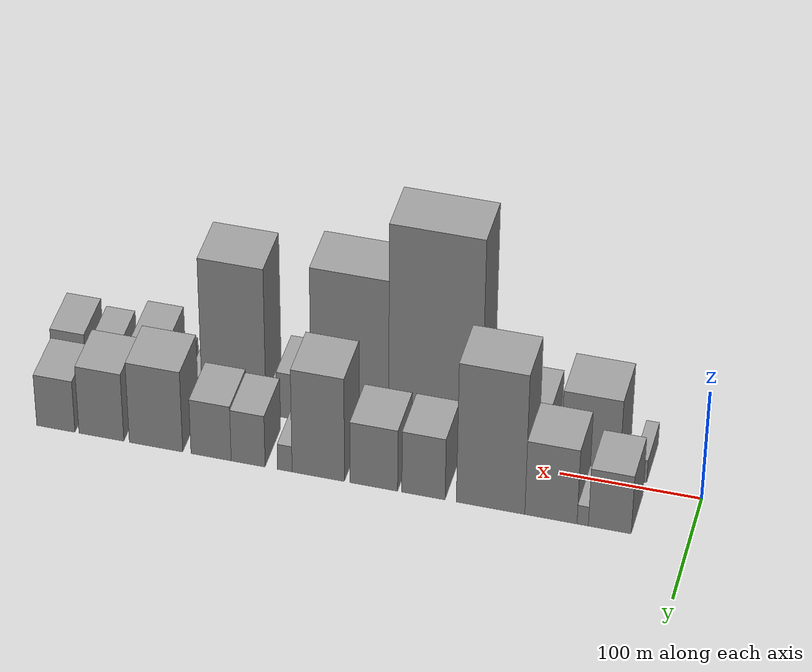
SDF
<sdf version="1.6">
 <world name="default">
  <scene>
   <sky><clouds><speed>12</speed></clouds></sky>
   <ambient>0.4 0.4 0.4 1</ambient>
   <background>0.7 0.7 0.7 1</background>
   <shadows>1</shadows>
  </scene>
  <gravity>0 0 -9.8066</gravity>
  <magnetic_field>6e-06 2.3e-05 -4.2e-05</magnetic_field>
  <physics default="0" name="default_physics" type="ode">
   <ode>
    <solver>
     <type>quick</type>
     <iters>10</iters>
     <sor>1.0</sor>
     <use_dynamic_moi_rescaling>0</use_dynamic_moi_rescaling>
    </solver>
    <constraints>
     <cfm>0</cfm>
     <erp>0.2</erp>
     <contact_max_correcting_vel>100</contact_max_correcting_vel>
     <contact_surface_layer>0.001</contact_surface_layer>
    </constraints>
   </ode>
   <max_step_size>0.004</max_step_size>
   <real_time_factor>1</real_time_factor>
   <real_time_update_rate>250</real_time_update_rate>
  </physics>
  <light name="sun" type="directional">
   <pose>0 0 10 0 0 0</pose>
   <diffuse>0.8 0.8 0.8 1</diffuse>
   <specular>0.2 0.2 0.2 1</specular>
   <attenuation>
    <range>1000</range>
    <constant>0.9</constant>
    <linear>0.01</linear>
    <quadratic>0.001</quadratic>
   </attenuation>
   <direction>-0.5 0.1 -0.9</direction>
  </light>
  <model name="building_1">
   <static>1</static>
   <pose>55.0078 26.0000 0 0.000000 0.000000 1.570796</pose>
   <link name="link">
    <pose>0 0 27.00 0 0 0</pose>
    <collision name="collision"><geometry><box><size>40.0000 30.0156 54.0000</size></box></geometry></collision>
    <visual name="visual">
     <cast_shadows>0</cast_shadows>
     <geometry><box><size>40.0000 30.0156 54.0000</size></box></geometry>
     <material>
      <script>
       <uri>model://grey_wall/materials/scripts</uri>
       <uri>model://grey_wall/materials/textures</uri>
       <name>vrc/grey_wall</name>
      </script>
     </material>
    </visual>
   </link>
  </model>
  <model name="building_2">
   <static>1</static>
   <pose>73.9823 26.0000 0 0.000000 0.000000 1.570796</pose>
   <link name="link">
    <pose>0 0 9.00 0 0 0</pose>
    <collision name="collision"><geometry><box><size>40.0000 7.9334 18.0000</size></box></geometry></collision>
    <visual name="visual">
     <cast_shadows>0</cast_shadows>
     <geometry><box><size>40.0000 7.9334 18.0000</size></box></geometry>
     <material>
      <script>
       <uri>model://grey_wall/materials/scripts</uri>
       <uri>model://grey_wall/materials/textures</uri>
       <name>vrc/grey_wall</name>
      </script>
     </material>
    </visual>
   </link>
  </model>
  <model name="building_3">
   <static>1</static>
   <pose>96.3037 26.0000 0 0.000000 0.000000 1.570796</pose>
   <link name="link">
    <pose>0 0 34.50 0 0 0</pose>
    <collision name="collision"><geometry><box><size>40.0000 36.7094 69.0000</size></box></geometry></collision>
    <visual name="visual">
     <cast_shadows>0</cast_shadows>
     <geometry><box><size>40.0000 36.7094 69.0000</size></box></geometry>
     <material>
      <script>
       <uri>model://grey_wall/materials/scripts</uri>
       <uri>model://grey_wall/materials/textures</uri>
       <name>vrc/grey_wall</name>
      </script>
     </material>
    </visual>
   </link>
  </model>
  <model name="building_4">
   <static>1</static>
   <pose>138.9082 26.0000 0 0.000000 0.000000 1.570796</pose>
   <link name="link">
    <pose>0 0 64.50 0 0 0</pose>
    <collision name="collision"><geometry><box><size>40.0000 48.4997 129.0000</size></box></geometry></collision>
    <visual name="visual">
     <cast_shadows>0</cast_shadows>
     <geometry><box><size>40.0000 48.4997 129.0000</size></box></geometry>
     <material>
      <script>
       <uri>model://grey_wall/materials/scripts</uri>
       <uri>model://grey_wall/materials/textures</uri>
       <name>vrc/grey_wall</name>
      </script>
     </material>
    </visual>
   </link>
  </model>
  <model name="building_5">
   <static>1</static>
   <pose>186.5689 26.0000 0 0.000000 0.000000 1.570796</pose>
   <link name="link">
    <pose>0 0 28.50 0 0 0</pose>
    <collision name="collision"><geometry><box><size>40.0000 30.8215 57.0000</size></box></geometry></collision>
    <visual name="visual">
     <cast_shadows>0</cast_shadows>
     <geometry><box><size>40.0000 30.8215 57.0000</size></box></geometry>
     <material>
      <script>
       <uri>model://grey_wall/materials/scripts</uri>
       <uri>model://grey_wall/materials/textures</uri>
       <name>vrc/grey_wall</name>
      </script>
     </material>
    </visual>
   </link>
  </model>
  <model name="building_6">
   <static>1</static>
   <pose>222.0147 26.0000 0 0.000000 0.000000 1.570796</pose>
   <link name="link">
    <pose>0 0 28.50 0 0 0</pose>
    <collision name="collision"><geometry><box><size>40.0000 34.0702 57.0000</size></box></geometry></collision>
    <visual name="visual">
     <cast_shadows>0</cast_shadows>
     <geometry><box><size>40.0000 34.0702 57.0000</size></box></geometry>
     <material>
      <script>
       <uri>model://grey_wall/materials/scripts</uri>
       <uri>model://grey_wall/materials/textures</uri>
       <name>vrc/grey_wall</name>
      </script>
     </material>
    </visual>
   </link>
  </model>
  <model name="building_7">
   <static>1</static>
   <pose>261.8876 26.0000 0 0.000000 0.000000 1.570796</pose>
   <link name="link">
    <pose>0 0 48.00 0 0 0</pose>
    <collision name="collision"><geometry><box><size>40.0000 37.6754 96.0000</size></box></geometry></collision>
    <visual name="visual">
     <cast_shadows>0</cast_shadows>
     <geometry><box><size>40.0000 37.6754 96.0000</size></box></geometry>
     <material>
      <script>
       <uri>model://grey_wall/materials/scripts</uri>
       <uri>model://grey_wall/materials/textures</uri>
       <name>vrc/grey_wall</name>
      </script>
     </material>
    </visual>
   </link>
  </model>
  <model name="building_8">
   <static>1</static>
   <pose>285.9605 26.0000 0 0.000000 0.000000 1.570796</pose>
   <link name="link">
    <pose>0 0 12.00 0 0 0</pose>
    <collision name="collision"><geometry><box><size>40.0000 10.4705 24.0000</size></box></geometry></collision>
    <visual name="visual">
     <cast_shadows>0</cast_shadows>
     <geometry><box><size>40.0000 10.4705 24.0000</size></box></geometry>
     <material>
      <script>
       <uri>model://grey_wall/materials/scripts</uri>
       <uri>model://grey_wall/materials/textures</uri>
       <name>vrc/grey_wall</name>
      </script>
     </material>
    </visual>
   </link>
  </model>
  <model name="building_9">
   <static>1</static>
   <pose>312.4873 26.0000 0 0.000000 0.000000 1.570796</pose>
   <link name="link">
    <pose>0 0 24.00 0 0 0</pose>
    <collision name="collision"><geometry><box><size>40.0000 24.5831 48.0000</size></box></geometry></collision>
    <visual name="visual">
     <cast_shadows>0</cast_shadows>
     <geometry><box><size>40.0000 24.5831 48.0000</size></box></geometry>
     <material>
      <script>
       <uri>model://grey_wall/materials/scripts</uri>
       <uri>model://grey_wall/materials/textures</uri>
       <name>vrc/grey_wall</name>
      </script>
     </material>
    </visual>
   </link>
  </model>
  <model name="building_10">
   <static>1</static>
   <pose>339.4087 26.0000 0 0.000000 0.000000 1.570796</pose>
   <link name="link">
    <pose>0 0 25.50 0 0 0</pose>
    <collision name="collision"><geometry><box><size>40.0000 29.2597 51.0000</size></box></geometry></collision>
    <visual name="visual">
     <cast_shadows>0</cast_shadows>
     <geometry><box><size>40.0000 29.2597 51.0000</size></box></geometry>
     <material>
      <script>
       <uri>model://grey_wall/materials/scripts</uri>
       <uri>model://grey_wall/materials/textures</uri>
       <name>vrc/grey_wall</name>
      </script>
     </material>
    </visual>
   </link>
  </model>
  <model name="building_11">
   <static>1</static>
   <pose>379.5721 26.0000 0 0.000000 0.000000 1.570796</pose>
   <link name="link">
    <pose>0 0 37.50 0 0 0</pose>
    <collision name="collision"><geometry><box><size>40.0000 39.0671 75.0000</size></box></geometry></collision>
    <visual name="visual">
     <cast_shadows>0</cast_shadows>
     <geometry><box><size>40.0000 39.0671 75.0000</size></box></geometry>
     <material>
      <script>
       <uri>model://grey_wall/materials/scripts</uri>
       <uri>model://grey_wall/materials/textures</uri>
       <name>vrc/grey_wall</name>
      </script>
     </material>
    </visual>
   </link>
  </model>
  <model name="building_12">
   <static>1</static>
   <pose>419.6079 26.0000 0 0.000000 0.000000 1.570796</pose>
   <link name="link">
    <pose>0 0 31.50 0 0 0</pose>
    <collision name="collision"><geometry><box><size>40.0000 33.0046 63.0000</size></box></geometry></collision>
    <visual name="visual">
     <cast_shadows>0</cast_shadows>
     <geometry><box><size>40.0000 33.0046 63.0000</size></box></geometry>
     <material>
      <script>
       <uri>model://grey_wall/materials/scripts</uri>
       <uri>model://grey_wall/materials/textures</uri>
       <name>vrc/grey_wall</name>
      </script>
     </material>
    </visual>
   </link>
  </model>
  <model name="building_13">
   <static>1</static>
   <pose>453.1865 26.0000 0 0.000000 0.000000 1.570796</pose>
   <link name="link">
    <pose>0 0 24.00 0 0 0</pose>
    <collision name="collision"><geometry><box><size>40.0000 28.1525 48.0000</size></box></geometry></collision>
    <visual name="visual">
     <cast_shadows>0</cast_shadows>
     <geometry><box><size>40.0000 28.1525 48.0000</size></box></geometry>
     <material>
      <script>
       <uri>model://grey_wall/materials/scripts</uri>
       <uri>model://grey_wall/materials/textures</uri>
       <name>vrc/grey_wall</name>
      </script>
     </material>
    </visual>
   </link>
  </model>
  <model name="building_14">
   <static>1</static>
   <pose>44.6611 -26.0000 0 0.000000 0.000000 1.570796</pose>
   <link name="link">
    <pose>0 0 10.50 0 0 0</pose>
    <collision name="collision"><geometry><box><size>40.0000 9.3223 21.0000</size></box></geometry></collision>
    <visual name="visual">
     <cast_shadows>0</cast_shadows>
     <geometry><box><size>40.0000 9.3223 21.0000</size></box></geometry>
     <material>
      <script>
       <uri>model://grey_wall/materials/scripts</uri>
       <uri>model://grey_wall/materials/textures</uri>
       <name>vrc/grey_wall</name>
      </script>
     </material>
    </visual>
   </link>
  </model>
  <model name="building_15">
   <static>1</static>
   <pose>80.2363 -26.0000 0 0.000000 0.000000 1.570796</pose>
   <link name="link">
    <pose>0 0 36.00 0 0 0</pose>
    <collision name="collision"><geometry><box><size>40.0000 41.8281 72.0000</size></box></geometry></collision>
    <visual name="visual">
     <cast_shadows>0</cast_shadows>
     <geometry><box><size>40.0000 41.8281 72.0000</size></box></geometry>
     <material>
      <script>
       <uri>model://grey_wall/materials/scripts</uri>
       <uri>model://grey_wall/materials/textures</uri>
       <name>vrc/grey_wall</name>
      </script>
     </material>
    </visual>
   </link>
  </model>
  <model name="building_16">
   <static>1</static>
   <pose>124.4950 -26.0000 0 0.000000 0.000000 1.570796</pose>
   <link name="link">
    <pose>0 0 27.00 0 0 0</pose>
    <collision name="collision"><geometry><box><size>40.0000 30.6893 54.0000</size></box></geometry></collision>
    <visual name="visual">
     <cast_shadows>0</cast_shadows>
     <geometry><box><size>40.0000 30.6893 54.0000</size></box></geometry>
     <material>
      <script>
       <uri>model://grey_wall/materials/scripts</uri>
       <uri>model://grey_wall/materials/textures</uri>
       <name>vrc/grey_wall</name>
      </script>
     </material>
    </visual>
   </link>
  </model>
  <model name="building_17">
   <static>1</static>
   <pose>148.9701 -26.0000 0 0.000000 0.000000 1.570796</pose>
   <link name="link">
    <pose>0 0 18.00 0 0 0</pose>
    <collision name="collision"><geometry><box><size>40.0000 18.2610 36.0000</size></box></geometry></collision>
    <visual name="visual">
     <cast_shadows>0</cast_shadows>
     <geometry><box><size>40.0000 18.2610 36.0000</size></box></geometry>
     <material>
      <script>
       <uri>model://grey_wall/materials/scripts</uri>
       <uri>model://grey_wall/materials/textures</uri>
       <name>vrc/grey_wall</name>
      </script>
     </material>
    </visual>
   </link>
  </model>
  <model name="building_18">
   <static>1</static>
   <pose>191.5352 -26.0000 0 0.000000 0.000000 1.570796</pose>
   <link name="link">
    <pose>0 0 97.50 0 0 0</pose>
    <collision name="collision"><geometry><box><size>40.0000 66.8692 195.0000</size></box></geometry></collision>
    <visual name="visual">
     <cast_shadows>0</cast_shadows>
     <geometry><box><size>40.0000 66.8692 195.0000</size></box></geometry>
     <material>
      <script>
       <uri>model://grey_wall/materials/scripts</uri>
       <uri>model://grey_wall/materials/textures</uri>
       <name>vrc/grey_wall</name>
      </script>
     </material>
    </visual>
   </link>
  </model>
  <model name="building_19">
   <static>1</static>
   <pose>253.0371 -26.0000 0 0.000000 0.000000 1.570796</pose>
   <link name="link">
    <pose>0 0 72.00 0 0 0</pose>
    <collision name="collision"><geometry><box><size>40.0000 56.1347 144.0000</size></box></geometry></collision>
    <visual name="visual">
     <cast_shadows>0</cast_shadows>
     <geometry><box><size>40.0000 56.1347 144.0000</size></box></geometry>
     <material>
      <script>
       <uri>model://grey_wall/materials/scripts</uri>
       <uri>model://grey_wall/materials/textures</uri>
       <name>vrc/grey_wall</name>
      </script>
     </material>
    </visual>
   </link>
  </model>
  <model name="building_20">
   <static>1</static>
   <pose>293.6844 -26.0000 0 0.000000 0.000000 1.570796</pose>
   <link name="link">
    <pose>0 0 21.00 0 0 0</pose>
    <collision name="collision"><geometry><box><size>40.0000 25.1599 42.0000</size></box></geometry></collision>
    <visual name="visual">
     <cast_shadows>0</cast_shadows>
     <geometry><box><size>40.0000 25.1599 42.0000</size></box></geometry>
     <material>
      <script>
       <uri>model://grey_wall/materials/scripts</uri>
       <uri>model://grey_wall/materials/textures</uri>
       <name>vrc/grey_wall</name>
      </script>
     </material>
    </visual>
   </link>
  </model>
  <model name="building_21">
   <static>1</static>
   <pose>310.1856 -26.0000 0 0.000000 0.000000 1.570796</pose>
   <link name="link">
    <pose>0 0 9.00 0 0 0</pose>
    <collision name="collision"><geometry><box><size>40.0000 7.8425 18.0000</size></box></geometry></collision>
    <visual name="visual">
     <cast_shadows>0</cast_shadows>
     <geometry><box><size>40.0000 7.8425 18.0000</size></box></geometry>
     <material>
      <script>
       <uri>model://grey_wall/materials/scripts</uri>
       <uri>model://grey_wall/materials/textures</uri>
       <name>vrc/grey_wall</name>
      </script>
     </material>
    </visual>
   </link>
  </model>
  <model name="building_22">
   <static>1</static>
   <pose>337.5874 -26.0000 0 0.000000 0.000000 1.570796</pose>
   <link name="link">
    <pose>0 0 67.50 0 0 0</pose>
    <collision name="collision"><geometry><box><size>40.0000 46.9611 135.0000</size></box></geometry></collision>
    <visual name="visual">
     <cast_shadows>0</cast_shadows>
     <geometry><box><size>40.0000 46.9611 135.0000</size></box></geometry>
     <material>
      <script>
       <uri>model://grey_wall/materials/scripts</uri>
       <uri>model://grey_wall/materials/textures</uri>
       <name>vrc/grey_wall</name>
      </script>
     </material>
    </visual>
   </link>
  </model>
  <model name="building_23">
   <static>1</static>
   <pose>368.3259 -26.0000 0 0.000000 0.000000 1.570796</pose>
   <link name="link">
    <pose>0 0 9.00 0 0 0</pose>
    <collision name="collision"><geometry><box><size>40.0000 8.5161 18.0000</size></box></geometry></collision>
    <visual name="visual">
     <cast_shadows>0</cast_shadows>
     <geometry><box><size>40.0000 8.5161 18.0000</size></box></geometry>
     <material>
      <script>
       <uri>model://grey_wall/materials/scripts</uri>
       <uri>model://grey_wall/materials/textures</uri>
       <name>vrc/grey_wall</name>
      </script>
     </material>
    </visual>
   </link>
  </model>
  <model name="building_24">
   <static>1</static>
   <pose>380.4385 -26.0000 0 0.000000 0.000000 1.570796</pose>
   <link name="link">
    <pose>0 0 12.00 0 0 0</pose>
    <collision name="collision"><geometry><box><size>40.0000 9.7090 24.0000</size></box></geometry></collision>
    <visual name="visual">
     <cast_shadows>0</cast_shadows>
     <geometry><box><size>40.0000 9.7090 24.0000</size></box></geometry>
     <material>
      <script>
       <uri>model://grey_wall/materials/scripts</uri>
       <uri>model://grey_wall/materials/textures</uri>
       <name>vrc/grey_wall</name>
      </script>
     </material>
    </visual>
   </link>
  </model>
  <model name="building_25">
   <static>1</static>
   <pose>398.4980 -26.0000 0 0.000000 0.000000 1.570796</pose>
   <link name="link">
    <pose>0 0 25.50 0 0 0</pose>
    <collision name="collision"><geometry><box><size>40.0000 26.4100 51.0000</size></box></geometry></collision>
    <visual name="visual">
     <cast_shadows>0</cast_shadows>
     <geometry><box><size>40.0000 26.4100 51.0000</size></box></geometry>
     <material>
      <script>
       <uri>model://grey_wall/materials/scripts</uri>
       <uri>model://grey_wall/materials/textures</uri>
       <name>vrc/grey_wall</name>
      </script>
     </material>
    </visual>
   </link>
  </model>
  <model name="building_26">
   <static>1</static>
   <pose>432.3428 -26.0000 0 0.000000 0.000000 1.570796</pose>
   <link name="link">
    <pose>0 0 19.50 0 0 0</pose>
    <collision name="collision"><geometry><box><size>40.0000 21.2796 39.0000</size></box></geometry></collision>
    <visual name="visual">
     <cast_shadows>0</cast_shadows>
     <geometry><box><size>40.0000 21.2796 39.0000</size></box></geometry>
     <material>
      <script>
       <uri>model://grey_wall/materials/scripts</uri>
       <uri>model://grey_wall/materials/textures</uri>
       <name>vrc/grey_wall</name>
      </script>
     </material>
    </visual>
   </link>
  </model>
  <model name="building_27">
   <static>1</static>
   <pose>459.6263 -26.0000 0 0.000000 0.000000 1.570796</pose>
   <link name="link">
    <pose>0 0 22.50 0 0 0</pose>
    <collision name="collision"><geometry><box><size>40.0000 25.2873 45.0000</size></box></geometry></collision>
    <visual name="visual">
     <cast_shadows>0</cast_shadows>
     <geometry><box><size>40.0000 25.2873 45.0000</size></box></geometry>
     <material>
      <script>
       <uri>model://grey_wall/materials/scripts</uri>
       <uri>model://grey_wall/materials/textures</uri>
       <name>vrc/grey_wall</name>
      </script>
     </material>
    </visual>
   </link>
  </model>
 </world>
</sdf>
